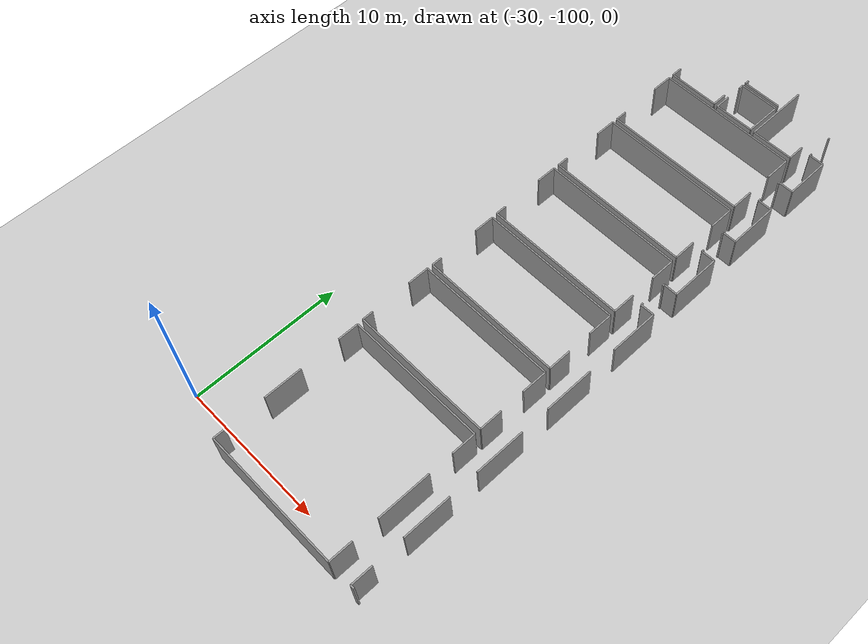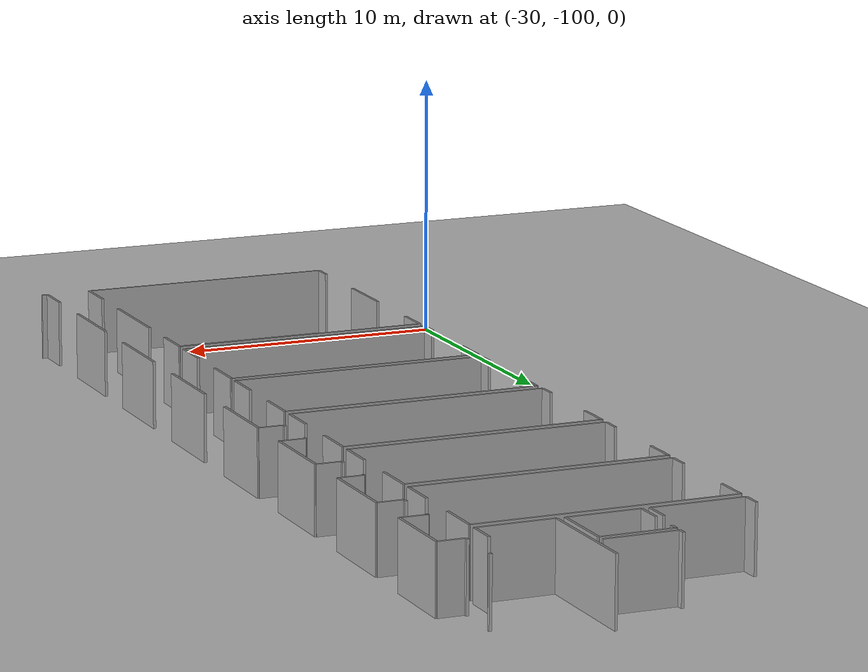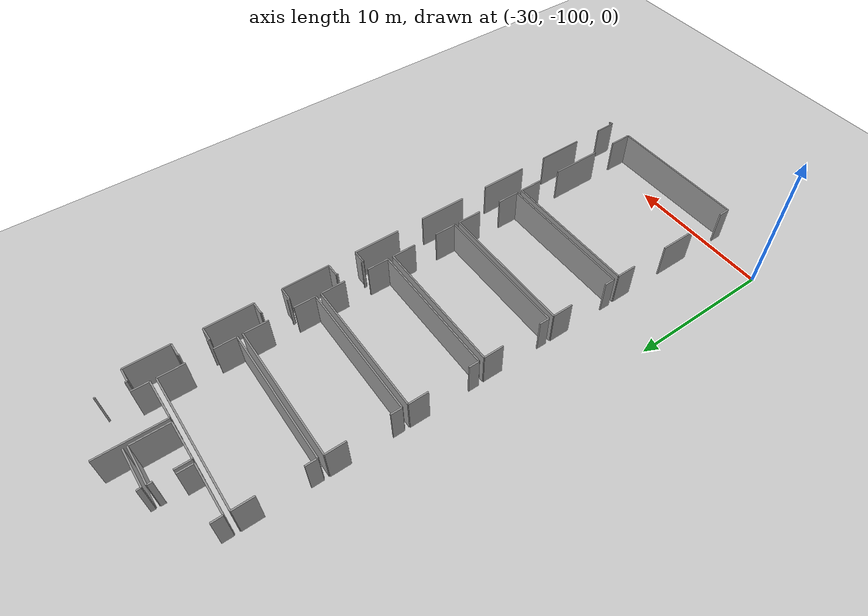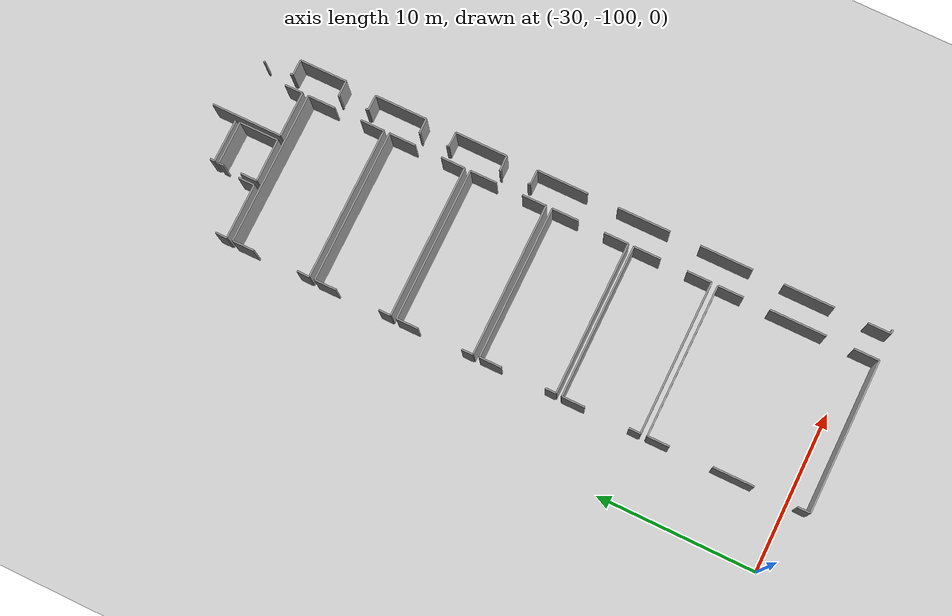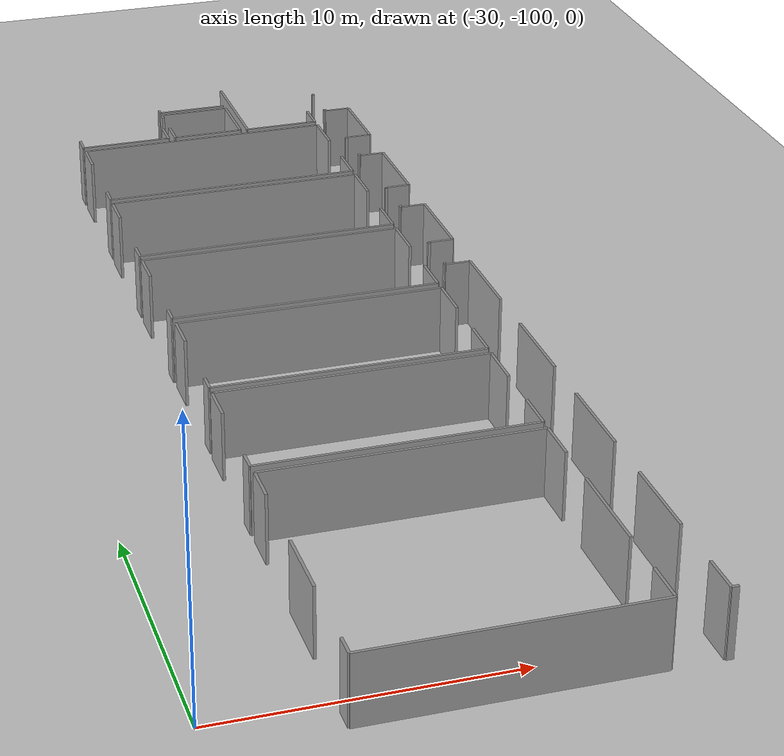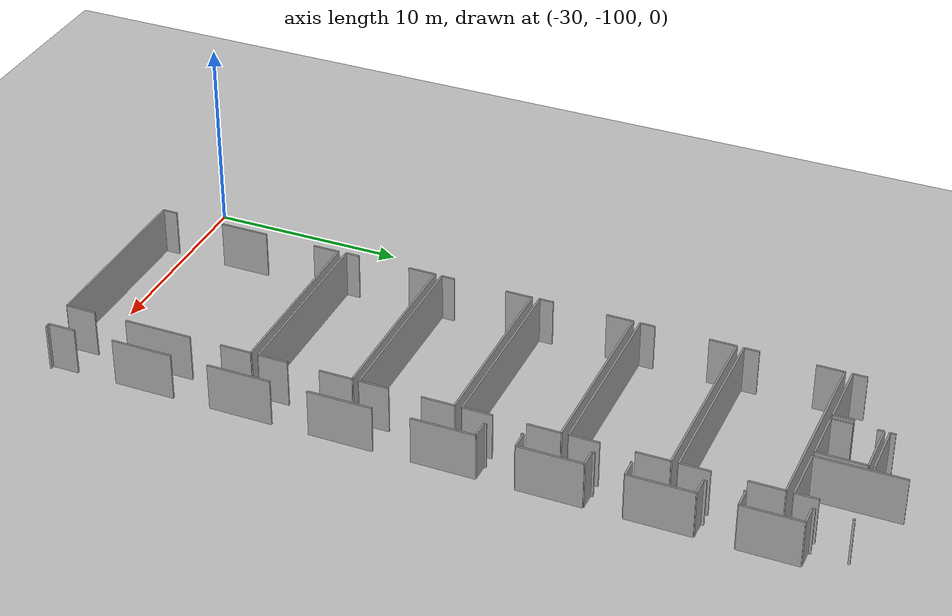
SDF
<sdf version="1.6">
 <world name="default">
  <model name="ground_plane">
   <static>1</static>
   <link name="link">
    <collision name="collision">
     <geometry><plane><normal>0 0 1</normal><size>100 100</size></plane></geometry>
     <surface><friction><ode><mu>100</mu><mu2>50</mu2></ode></friction></surface>
    </collision>
    <visual name="visual">
     <cast_shadows>0</cast_shadows>
     <geometry><plane><normal>0 0 1</normal><size>100 100</size></plane></geometry>
     <material>
      <script><uri>file://media/materials/scripts/gazebo.material</uri><name>Gazebo/Grey</name></script>
     </material>
    </visual>
   </link>
  </model>
  <model name="0510045922_A-40">
   <static>1</static>
   <link name="Wall_1692">
    <collision name="Wall_1692_Collision">
     <geometry><box><size>0.731524432865 0.1 2.5</size></box></geometry>
     <pose>0.365762216433 0 1.25 0 0 0</pose>
    </collision>
    <visual name="Wall_1692_Visual">
     <pose>0.365762216433 0 1.25 0 0 0</pose>
     <geometry><box><size>0.731524432865 0.1 2.5</size></box></geometry>
     <material>
      <script><uri>file://media/materials/scripts/gazebo.material</uri><name>Gazebo/Grey</name></script>
      <ambient>1 1 1 1</ambient>
     </material>
    </visual>
    <pose>108.210510262 -165.759267967 0 0 0 1.57079632679</pose>
   </link>
   <link name="Wall_1698">
    <collision name="Wall_1698_Collision">
     <geometry><box><size>1.0309461778 0.1 2.5</size></box></geometry>
     <pose>0.515473088899 0 1.25 0 0 0</pose>
    </collision>
    <visual name="Wall_1698_Visual">
     <pose>0.515473088899 0 1.25 0 0 0</pose>
     <geometry><box><size>1.0309461778 0.1 2.5</size></box></geometry>
     <material>
      <script><uri>file://media/materials/scripts/gazebo.material</uri><name>Gazebo/Grey</name></script>
      <ambient>1 1 1 1</ambient>
     </material>
    </visual>
    <pose>111.676736354 -164.722729872 0 0 0 -1.57079632679</pose>
   </link>
   <link name="Wall_1699">
    <collision name="Wall_1699_Collision">
     <geometry><box><size>3.46623060198 0.1 2.5</size></box></geometry>
     <pose>1.73311530099 0 1.25 0 0 0</pose>
    </collision>
    <visual name="Wall_1699_Visual">
     <pose>1.73311530099 0 1.25 0 0 0</pose>
     <geometry><box><size>3.46623060198 0.1 2.5</size></box></geometry>
     <material>
      <script><uri>file://media/materials/scripts/gazebo.material</uri><name>Gazebo/Grey</name></script>
      <ambient>1 1 1 1</ambient>
     </material>
    </visual>
    <pose>111.676736354 -165.75367605 0 0 0 -3.13997939694</pose>
   </link>
   <link name="Wall_1702">
    <collision name="Wall_1702_Collision">
     <geometry><box><size>2.67929084324 0.1 2.5</size></box></geometry>
     <pose>1.33964542162 0 1.25 0 0 0</pose>
    </collision>
    <visual name="Wall_1702_Visual">
     <pose>1.33964542162 0 1.25 0 0 0</pose>
     <geometry><box><size>2.67929084324 0.1 2.5</size></box></geometry>
     <material>
      <script><uri>file://media/materials/scripts/gazebo.material</uri><name>Gazebo/Grey</name></script>
      <ambient>1 1 1 1</ambient>
     </material>
    </visual>
    <pose>114.645790176 -163.009315626 0 0 0 3.14159265359</pose>
   </link>
   <link name="Wall_1703">
    <collision name="Wall_1703_Collision">
     <geometry><box><size>0.285441952087 0.1 2.5</size></box></geometry>
     <pose>0.142720976044 0 1.25 0 0 0</pose>
    </collision>
    <visual name="Wall_1703_Visual">
     <pose>0.142720976044 0 1.25 0 0 0</pose>
     <geometry><box><size>0.285441952087 0.1 2.5</size></box></geometry>
     <material>
      <script><uri>file://media/materials/scripts/gazebo.material</uri><name>Gazebo/Grey</name></script>
      <ambient>1 1 1 1</ambient>
     </material>
    </visual>
    <pose>111.966499333 -163.009315626 0 0 0 1.57079632679</pose>
   </link>
   <link name="Wall_1705">
    <collision name="Wall_1705_Collision">
     <geometry><box><size>1.05585562687 0.1 2.5</size></box></geometry>
     <pose>0.527927813433 0 1.25 0 0 0</pose>
    </collision>
    <visual name="Wall_1705_Visual">
     <pose>0.527927813433 0 1.25 0 0 0</pose>
     <geometry><box><size>1.05585562687 0.1 2.5</size></box></geometry>
     <material>
      <script><uri>file://media/materials/scripts/gazebo.material</uri><name>Gazebo/Grey</name></script>
      <ambient>1 1 1 1</ambient>
     </material>
    </visual>
    <pose>111.956586389 -165.762318104 0 0 0 1.57079632679</pose>
   </link>
   <link name="Wall_1706">
    <collision name="Wall_1706_Collision">
     <geometry><box><size>0.316960030501 0.1 2.5</size></box></geometry>
     <pose>0.158480015251 0 1.25 0 0 0</pose>
    </collision>
    <visual name="Wall_1706_Visual">
     <pose>0.158480015251 0 1.25 0 0 0</pose>
     <geometry><box><size>0.316960030501 0.1 2.5</size></box></geometry>
     <material>
      <script><uri>file://media/materials/scripts/gazebo.material</uri><name>Gazebo/Grey</name></script>
      <ambient>1 1 1 1</ambient>
     </material>
    </visual>
    <pose>111.956586389 -163.597229459 0 0 0 1.57079632679</pose>
   </link>
   <link name="Wall_1707">
    <collision name="Wall_1707_Collision">
     <geometry><box><size>2.70191268984 0.1 2.5</size></box></geometry>
     <pose>1.35095634492 0 1.25 0 0 0</pose>
    </collision>
    <visual name="Wall_1707_Visual">
     <pose>1.35095634492 0 1.25 0 0 0</pose>
     <geometry><box><size>2.70191268984 0.1 2.5</size></box></geometry>
     <material>
      <script><uri>file://media/materials/scripts/gazebo.material</uri><name>Gazebo/Grey</name></script>
      <ambient>1 1 1 1</ambient>
     </material>
    </visual>
    <pose>111.956586389 -163.280269429 0 0 0 0.0</pose>
   </link>
   <link name="Wall_1708">
    <collision name="Wall_1708_Collision">
     <geometry><box><size>2.46883141641 0.1 2.5</size></box></geometry>
     <pose>1.2344157082 0 1.25 0 0 0</pose>
    </collision>
    <visual name="Wall_1708_Visual">
     <pose>1.2344157082 0 1.25 0 0 0</pose>
     <geometry><box><size>2.46883141641 0.1 2.5</size></box></geometry>
     <material>
      <script><uri>file://media/materials/scripts/gazebo.material</uri><name>Gazebo/Grey</name></script>
      <ambient>1 1 1 1</ambient>
     </material>
    </visual>
    <pose>114.658499079 -163.280269429 0 0 0 -1.57079632679</pose>
   </link>
   <link name="Wall_1709">
    <collision name="Wall_1709_Collision">
     <geometry><box><size>2.70194501784 0.1 2.5</size></box></geometry>
     <pose>1.35097250892 0 1.25 0 0 0</pose>
    </collision>
    <visual name="Wall_1709_Visual">
     <pose>1.35097250892 0 1.25 0 0 0</pose>
     <geometry><box><size>2.70194501784 0.1 2.5</size></box></geometry>
     <material>
      <script><uri>file://media/materials/scripts/gazebo.material</uri><name>Gazebo/Grey</name></script>
      <ambient>1 1 1 1</ambient>
     </material>
    </visual>
    <pose>114.658499079 -165.749100845 0 0 0 -3.13670087699</pose>
   </link>
   <link name="Wall_1710">
    <collision name="Wall_1710_Collision">
     <geometry><box><size>4.4196479634 0.1 2.5</size></box></geometry>
     <pose>2.2098239817 0 1.25 0 0 0</pose>
    </collision>
    <visual name="Wall_1710_Visual">
     <pose>2.2098239817 0 1.25 0 0 0</pose>
     <geometry><box><size>4.4196479634 0.1 2.5</size></box></geometry>
     <material>
      <script><uri>file://media/materials/scripts/gazebo.material</uri><name>Gazebo/Grey</name></script>
      <ambient>1 1 1 1</ambient>
     </material>
    </visual>
    <pose>114.956141577 -165.764351528 0 0 0 1.57079632679</pose>
   </link>
   <link name="Wall_1713">
    <collision name="Wall_1713_Collision">
     <geometry><box><size>1.14176780835 0.1 2.5</size></box></geometry>
     <pose>0.570883904175 0 1.25 0 0 0</pose>
    </collision>
    <visual name="Wall_1713_Visual">
     <pose>0.570883904175 0 1.25 0 0 0</pose>
     <geometry><box><size>1.14176780835 0.1 2.5</size></box></geometry>
     <material>
      <script><uri>file://media/materials/scripts/gazebo.material</uri><name>Gazebo/Grey</name></script>
      <ambient>1 1 1 1</ambient>
     </material>
    </visual>
    <pose>117.813611235 -164.61343331 0 0 0 -1.57079632679</pose>
   </link>
   <link name="Wall_1714">
    <collision name="Wall_1714_Collision">
     <geometry><box><size>2.85748430853 0.1 2.5</size></box></geometry>
     <pose>1.42874215427 0 1.25 0 0 0</pose>
    </collision>
    <visual name="Wall_1714_Visual">
     <pose>1.42874215427 0 1.25 0 0 0</pose>
     <geometry><box><size>2.85748430853 0.1 2.5</size></box></geometry>
     <material>
      <script><uri>file://media/materials/scripts/gazebo.material</uri><name>Gazebo/Grey</name></script>
      <ambient>1 1 1 1</ambient>
     </material>
    </visual>
    <pose>117.813611235 -165.755201118 0 0 0 -3.13839038736</pose>
   </link>
   <link name="Wall_1715">
    <collision name="Wall_1715_Collision">
     <geometry><box><size>0.785156001779 0.1 2.5</size></box></geometry>
     <pose>0.39257800089 0 1.25 0 0 0</pose>
    </collision>
    <visual name="Wall_1715_Visual">
     <pose>0.39257800089 0 1.25 0 0 0</pose>
     <geometry><box><size>0.785156001779 0.1 2.5</size></box></geometry>
     <material>
      <script><uri>file://media/materials/scripts/gazebo.material</uri><name>Gazebo/Grey</name></script>
      <ambient>1 1 1 1</ambient>
     </material>
    </visual>
    <pose>108.207205948 -171.064218085 0 0 0 1.57079632679</pose>
   </link>
   <link name="Wall_1716">
    <collision name="Wall_1716_Collision">
     <geometry><box><size>1.37993264282 0.1 2.5</size></box></geometry>
     <pose>0.689966321408 0 1.25 0 0 0</pose>
    </collision>
    <visual name="Wall_1716_Visual">
     <pose>0.689966321408 0 1.25 0 0 0</pose>
     <geometry><box><size>1.37993264282 0.1 2.5</size></box></geometry>
     <material>
      <script><uri>file://media/materials/scripts/gazebo.material</uri><name>Gazebo/Grey</name></script>
      <ambient>1 1 1 1</ambient>
     </material>
    </visual>
    <pose>108.207205948 -167.512079812 0 0 0 1.57079632679</pose>
   </link>
   <link name="Wall_1717">
    <collision name="Wall_1717_Collision">
     <geometry><box><size>9.60005083561 0.1 2.5</size></box></geometry>
     <pose>4.80002541781 0 1.25 0 0 0</pose>
    </collision>
    <visual name="Wall_1717_Visual">
     <pose>4.80002541781 0 1.25 0 0 0</pose>
     <geometry><box><size>9.60005083561 0.1 2.5</size></box></geometry>
     <material>
      <script><uri>file://media/materials/scripts/gazebo.material</uri><name>Gazebo/Grey</name></script>
      <ambient>1 1 1 1</ambient>
     </material>
    </visual>
    <pose>108.207205948 -166.132147169 0 0 0 0.0</pose>
   </link>
   <link name="Wall_1718">
    <collision name="Wall_1718_Collision">
     <geometry><box><size>1.74035712016 0.1 2.5</size></box></geometry>
     <pose>0.870178560081 0 1.25 0 0 0</pose>
    </collision>
    <visual name="Wall_1718_Visual">
     <pose>0.870178560081 0 1.25 0 0 0</pose>
     <geometry><box><size>1.74035712016 0.1 2.5</size></box></geometry>
     <material>
      <script><uri>file://media/materials/scripts/gazebo.material</uri><name>Gazebo/Grey</name></script>
      <ambient>1 1 1 1</ambient>
     </material>
    </visual>
    <pose>117.807256783 -166.132147169 0 0 0 -1.57079632679</pose>
   </link>
   <link name="Wall_1719">
    <collision name="Wall_1719_Collision">
     <geometry><box><size>1.5105801614 0.1 2.5</size></box></geometry>
     <pose>0.755290080702 0 1.25 0 0 0</pose>
    </collision>
    <visual name="Wall_1719_Visual">
     <pose>0.755290080702 0 1.25 0 0 0</pose>
     <geometry><box><size>1.5105801614 0.1 2.5</size></box></geometry>
     <material>
      <script><uri>file://media/materials/scripts/gazebo.material</uri><name>Gazebo/Grey</name></script>
      <ambient>1 1 1 1</ambient>
     </material>
    </visual>
    <pose>117.807256783 -169.552367033 0 0 0 -1.57079632679</pose>
   </link>
   <link name="Wall_1720">
    <collision name="Wall_1720_Collision">
     <geometry><box><size>9.60005091973 0.1 2.5</size></box></geometry>
     <pose>4.80002545987 0 1.25 0 0 0</pose>
    </collision>
    <visual name="Wall_1720_Visual">
     <pose>4.80002545987 0 1.25 0 0 0</pose>
     <geometry><box><size>9.60005091973 0.1 2.5</size></box></geometry>
     <material>
      <script><uri>file://media/materials/scripts/gazebo.material</uri><name>Gazebo/Grey</name></script>
      <ambient>1 1 1 1</ambient>
     </material>
    </visual>
    <pose>117.807256783 -171.062947195 0 0 0 -3.14146026989</pose>
   </link>
   <link name="Wall_1721">
    <collision name="Wall_1721_Collision">
     <geometry><box><size>0.759992374658 0.1 2.5</size></box></geometry>
     <pose>0.379996187329 0 1.25 0 0 0</pose>
    </collision>
    <visual name="Wall_1721_Visual">
     <pose>0.379996187329 0 1.25 0 0 0</pose>
     <geometry><box><size>0.759992374658 0.1 2.5</size></box></geometry>
     <material>
      <script><uri>file://media/materials/scripts/gazebo.material</uri><name>Gazebo/Grey</name></script>
      <ambient>1 1 1 1</ambient>
     </material>
    </visual>
    <pose>108.191446909 -176.277409926 0 0 0 1.57079632679</pose>
   </link>
   <link name="Wall_1722">
    <collision name="Wall_1722_Collision">
     <geometry><box><size>1.36468195971 0.1 2.5</size></box></geometry>
     <pose>0.682340979856 0 1.25 0 0 0</pose>
    </collision>
    <visual name="Wall_1722_Visual">
     <pose>0.682340979856 0 1.25 0 0 0</pose>
     <geometry><box><size>1.36468195971 0.1 2.5</size></box></geometry>
     <material>
      <script><uri>file://media/materials/scripts/gazebo.material</uri><name>Gazebo/Grey</name></script>
      <ambient>1 1 1 1</ambient>
     </material>
    </visual>
    <pose>108.191446909 -172.787036919 0 0 0 1.57079632679</pose>
   </link>
   <link name="Wall_1723">
    <collision name="Wall_1723_Collision">
     <geometry><box><size>9.61657240897 0.1 2.5</size></box></geometry>
     <pose>4.80828620449 0 1.25 0 0 0</pose>
    </collision>
    <visual name="Wall_1723_Visual">
     <pose>4.80828620449 0 1.25 0 0 0</pose>
     <geometry><box><size>9.61657240897 0.1 2.5</size></box></geometry>
     <material>
      <script><uri>file://media/materials/scripts/gazebo.material</uri><name>Gazebo/Grey</name></script>
      <ambient>1 1 1 1</ambient>
     </material>
    </visual>
    <pose>108.191446909 -171.42235496 0 0 0 0.0</pose>
   </link>
   <link name="Wall_1724">
    <collision name="Wall_1724_Collision">
     <geometry><box><size>1.67681260723 0.1 2.5</size></box></geometry>
     <pose>0.838406303616 0 1.25 0 0 0</pose>
    </collision>
    <visual name="Wall_1724_Visual">
     <pose>0.838406303616 0 1.25 0 0 0</pose>
     <geometry><box><size>1.67681260723 0.1 2.5</size></box></geometry>
     <material>
      <script><uri>file://media/materials/scripts/gazebo.material</uri><name>Gazebo/Grey</name></script>
      <ambient>1 1 1 1</ambient>
     </material>
    </visual>
    <pose>117.808019318 -171.42235496 0 0 0 -1.57079632679</pose>
   </link>
   <link name="Wall_1725">
    <collision name="Wall_1725_Collision">
     <geometry><box><size>1.49863379297 0.1 2.5</size></box></geometry>
     <pose>0.749316896486 0 1.25 0 0 0</pose>
    </collision>
    <visual name="Wall_1725_Visual">
     <pose>0.749316896486 0 1.25 0 0 0</pose>
     <geometry><box><size>1.49863379297 0.1 2.5</size></box></geometry>
     <material>
      <script><uri>file://media/materials/scripts/gazebo.material</uri><name>Gazebo/Grey</name></script>
      <ambient>1 1 1 1</ambient>
     </material>
    </visual>
    <pose>117.808019318 -174.780555379 0 0 0 -1.57079632679</pose>
   </link>
   <link name="Wall_1726">
    <collision name="Wall_1726_Collision">
     <geometry><box><size>9.61657257357 0.1 2.5</size></box></geometry>
     <pose>4.80828628678 0 1.25 0 0 0</pose>
    </collision>
    <visual name="Wall_1726_Visual">
     <pose>4.80828628678 0 1.25 0 0 0</pose>
     <geometry><box><size>9.61657257357 0.1 2.5</size></box></geometry>
     <material>
      <script><uri>file://media/materials/scripts/gazebo.material</uri><name>Gazebo/Grey</name></script>
      <ambient>1 1 1 1</ambient>
     </material>
    </visual>
    <pose>117.808019318 -176.279189172 0 0 0 3.14140763483</pose>
   </link>
   <link name="Wall_1727">
    <collision name="Wall_1727_Collision">
     <geometry><box><size>0.721103132745 0.1 2.5</size></box></geometry>
     <pose>0.360551566372 0 1.25 0 0 0</pose>
    </collision>
    <visual name="Wall_1727_Visual">
     <pose>0.360551566372 0 1.25 0 0 0</pose>
     <geometry><box><size>0.721103132745 0.1 2.5</size></box></geometry>
     <material>
      <script><uri>file://media/materials/scripts/gazebo.material</uri><name>Gazebo/Grey</name></script>
      <ambient>1 1 1 1</ambient>
     </material>
    </visual>
    <pose>108.178992184 -181.500768889 0 0 0 1.57079632679</pose>
   </link>
   <link name="Wall_1728">
    <collision name="Wall_1728_Collision">
     <geometry><box><size>1.35553154985 0.1 2.5</size></box></geometry>
     <pose>0.677765774925 0 1.25 0 0 0</pose>
    </collision>
    <visual name="Wall_1728_Visual">
     <pose>0.677765774925 0 1.25 0 0 0</pose>
     <geometry><box><size>1.35553154985 0.1 2.5</size></box></geometry>
     <material>
      <script><uri>file://media/materials/scripts/gazebo.material</uri><name>Gazebo/Grey</name></script>
      <ambient>1 1 1 1</ambient>
     </material>
    </visual>
    <pose>108.178992184 -178.005312321 0 0 0 1.57079632679</pose>
   </link>
   <link name="Wall_1729">
    <collision name="Wall_1729_Collision">
     <geometry><box><size>9.63182309208 0.1 2.5</size></box></geometry>
     <pose>4.81591154604 0 1.25 0 0 0</pose>
    </collision>
    <visual name="Wall_1729_Visual">
     <pose>4.81591154604 0 1.25 0 0 0</pose>
     <geometry><box><size>9.63182309208 0.1 2.5</size></box></geometry>
     <material>
      <script><uri>file://media/materials/scripts/gazebo.material</uri><name>Gazebo/Grey</name></script>
      <ambient>1 1 1 1</ambient>
     </material>
    </visual>
    <pose>108.178992184 -176.649780771 0 0 0 0.0</pose>
   </link>
   <link name="Wall_1730">
    <collision name="Wall_1730_Collision">
     <geometry><box><size>1.67706678528 0.1 2.5</size></box></geometry>
     <pose>0.838533392642 0 1.25 0 0 0</pose>
    </collision>
    <visual name="Wall_1730_Visual">
     <pose>0.838533392642 0 1.25 0 0 0</pose>
     <geometry><box><size>1.67706678528 0.1 2.5</size></box></geometry>
     <material>
      <script><uri>file://media/materials/scripts/gazebo.material</uri><name>Gazebo/Grey</name></script>
      <ambient>1 1 1 1</ambient>
     </material>
    </visual>
    <pose>117.810815276 -176.649780771 0 0 0 -1.57079632679</pose>
   </link>
   <link name="Wall_1731">
    <collision name="Wall_1731_Collision">
     <geometry><box><size>1.51566372244 0.1 2.5</size></box></geometry>
     <pose>0.757831861219 0 1.25 0 0 0</pose>
    </collision>
    <visual name="Wall_1731_Visual">
     <pose>0.757831861219 0 1.25 0 0 0</pose>
     <geometry><box><size>1.51566372244 0.1 2.5</size></box></geometry>
     <material>
      <script><uri>file://media/materials/scripts/gazebo.material</uri><name>Gazebo/Grey</name></script>
      <ambient>1 1 1 1</ambient>
     </material>
    </visual>
    <pose>117.810815276 -179.987901125 0 0 0 -1.57079632679</pose>
   </link>
   <link name="Wall_1732">
    <collision name="Wall_1732_Collision">
     <geometry><box><size>9.63182349789 0.1 2.5</size></box></geometry>
     <pose>4.81591174894 0 1.25 0 0 0</pose>
    </collision>
    <visual name="Wall_1732_Visual">
     <pose>4.81591174894 0 1.25 0 0 0</pose>
     <geometry><box><size>9.63182349789 0.1 2.5</size></box></geometry>
     <material>
      <script><uri>file://media/materials/scripts/gazebo.material</uri><name>Gazebo/Grey</name></script>
      <ambient>1 1 1 1</ambient>
     </material>
    </visual>
    <pose>117.810815276 -181.503564847 0 0 0 3.14130237018</pose>
   </link>
   <link name="Wall_1733">
    <collision name="Wall_1733_Collision">
     <geometry><box><size>0.685772383555 0.1 2.5</size></box></geometry>
     <pose>0.342886191777 0 1.25 0 0 0</pose>
    </collision>
    <visual name="Wall_1733_Visual">
     <pose>0.342886191777 0 1.25 0 0 0</pose>
     <geometry><box><size>0.685772383555 0.1 2.5</size></box></geometry>
     <material>
      <script><uri>file://media/materials/scripts/gazebo.material</uri><name>Gazebo/Grey</name></script>
      <ambient>1 1 1 1</ambient>
     </material>
    </visual>
    <pose>108.211272797 -186.713198195 0 0 0 1.57079632679</pose>
   </link>
   <link name="Wall_1734">
    <collision name="Wall_1734_Collision">
     <geometry><box><size>1.38222024528 0.1 2.5</size></box></geometry>
     <pose>0.691110122641 0 1.25 0 0 0</pose>
    </collision>
    <visual name="Wall_1734_Visual">
     <pose>0.691110122641 0 1.25 0 0 0</pose>
     <geometry><box><size>1.38222024528 0.1 2.5</size></box></geometry>
     <material>
      <script><uri>file://media/materials/scripts/gazebo.material</uri><name>Gazebo/Grey</name></script>
      <ambient>1 1 1 1</ambient>
     </material>
    </visual>
    <pose>108.211272797 -183.270864841 0 0 0 1.57079632679</pose>
   </link>
   <link name="Wall_1735">
    <collision name="Wall_1735_Collision">
     <geometry><box><size>9.61047213573 0.1 2.5</size></box></geometry>
     <pose>4.80523606787 0 1.25 0 0 0</pose>
    </collision>
    <visual name="Wall_1735_Visual">
     <pose>4.80523606787 0 1.25 0 0 0</pose>
     <geometry><box><size>9.61047213573 0.1 2.5</size></box></geometry>
     <material>
      <script><uri>file://media/materials/scripts/gazebo.material</uri><name>Gazebo/Grey</name></script>
      <ambient>1 1 1 1</ambient>
     </material>
    </visual>
    <pose>108.211272797 -181.888644596 0 0 0 0.0</pose>
   </link>
   <link name="Wall_1736">
    <collision name="Wall_1736_Collision">
     <geometry><box><size>1.67071233399 0.1 2.5</size></box></geometry>
     <pose>0.835356166995 0 1.25 0 0 0</pose>
    </collision>
    <visual name="Wall_1736_Visual">
     <pose>0.835356166995 0 1.25 0 0 0</pose>
     <geometry><box><size>1.67071233399 0.1 2.5</size></box></geometry>
     <material>
      <script><uri>file://media/materials/scripts/gazebo.material</uri><name>Gazebo/Grey</name></script>
      <ambient>1 1 1 1</ambient>
     </material>
    </visual>
    <pose>117.821744932 -181.888644596 0 0 0 -1.57079632679</pose>
   </link>
   <link name="Wall_1737">
    <collision name="Wall_1737_Collision">
     <geometry><box><size>1.52761009087 0.1 2.5</size></box></geometry>
     <pose>0.763805045434 0 1.25 0 0 0</pose>
    </collision>
    <visual name="Wall_1737_Visual">
     <pose>0.763805045434 0 1.25 0 0 0</pose>
     <geometry><box><size>1.52761009087 0.1 2.5</size></box></geometry>
     <material>
      <script><uri>file://media/materials/scripts/gazebo.material</uri><name>Gazebo/Grey</name></script>
      <ambient>1 1 1 1</ambient>
     </material>
    </visual>
    <pose>117.821744932 -185.201092966 0 0 0 -1.57079632679</pose>
   </link>
   <link name="Wall_1738">
    <collision name="Wall_1738_Collision">
     <geometry><box><size>9.61048464295 0.1 2.5</size></box></geometry>
     <pose>4.80524232148 0 1.25 0 0 0</pose>
    </collision>
    <visual name="Wall_1738_Visual">
     <pose>4.80524232148 0 1.25 0 0 0</pose>
     <geometry><box><size>9.61048464295 0.1 2.5</size></box></geometry>
     <material>
      <script><uri>file://media/materials/scripts/gazebo.material</uri><name>Gazebo/Grey</name></script>
      <ambient>1 1 1 1</ambient>
     </material>
    </visual>
    <pose>117.821744932 -186.728703056 0 0 0 3.13997932518</pose>
   </link>
   <link name="Wall_1739">
    <collision name="Wall_1739_Collision">
     <geometry><box><size>0.722119844951 0.1 2.5</size></box></geometry>
     <pose>0.361059922476 0 1.25 0 0 0</pose>
    </collision>
    <visual name="Wall_1739_Visual">
     <pose>0.361059922476 0 1.25 0 0 0</pose>
     <geometry><box><size>0.722119844951 0.1 2.5</size></box></geometry>
     <material>
      <script><uri>file://media/materials/scripts/gazebo.material</uri><name>Gazebo/Grey</name></script>
      <ambient>1 1 1 1</ambient>
     </material>
    </visual>
    <pose>108.191446909 -191.983580098 0 0 0 1.57079632679</pose>
   </link>
   <link name="Wall_1740">
    <collision name="Wall_1740_Collision">
     <geometry><box><size>1.43483510199 0.1 2.5</size></box></geometry>
     <pose>0.717417550994 0 1.25 0 0 0</pose>
    </collision>
    <visual name="Wall_1740_Visual">
     <pose>0.717417550994 0 1.25 0 0 0</pose>
     <geometry><box><size>1.43483510199 0.1 2.5</size></box></geometry>
     <material>
      <script><uri>file://media/materials/scripts/gazebo.material</uri><name>Gazebo/Grey</name></script>
      <ambient>1 1 1 1</ambient>
     </material>
    </visual>
    <pose>108.191446909 -188.513795514 0 0 0 1.57079632679</pose>
   </link>
   <link name="Wall_1741">
    <collision name="Wall_1741_Collision">
     <geometry><box><size>9.62318103832 0.1 2.5</size></box></geometry>
     <pose>4.81159051916 0 1.25 0 0 0</pose>
    </collision>
    <visual name="Wall_1741_Visual">
     <pose>4.81159051916 0 1.25 0 0 0</pose>
     <geometry><box><size>9.62318103832 0.1 2.5</size></box></geometry>
     <material>
      <script><uri>file://media/materials/scripts/gazebo.material</uri><name>Gazebo/Grey</name></script>
      <ambient>1 1 1 1</ambient>
     </material>
    </visual>
    <pose>108.191446909 -187.078960412 0 0 0 0.0</pose>
   </link>
   <link name="Wall_1742">
    <collision name="Wall_1742_Collision">
     <geometry><box><size>1.70426383682 0.1 2.5</size></box></geometry>
     <pose>0.852131918409 0 1.25 0 0 0</pose>
    </collision>
    <visual name="Wall_1742_Visual">
     <pose>0.852131918409 0 1.25 0 0 0</pose>
     <geometry><box><size>1.70426383682 0.1 2.5</size></box></geometry>
     <material>
      <script><uri>file://media/materials/scripts/gazebo.material</uri><name>Gazebo/Grey</name></script>
      <ambient>1 1 1 1</ambient>
     </material>
    </visual>
    <pose>117.814627947 -187.078960412 0 0 0 -1.57079632679</pose>
   </link>
   <link name="Wall_1743">
    <collision name="Wall_1743_Collision">
     <geometry><box><size>1.53320200801 0.1 2.5</size></box></geometry>
     <pose>0.766601004003 0 1.25 0 0 0</pose>
    </collision>
    <visual name="Wall_1743_Visual">
     <pose>0.766601004003 0 1.25 0 0 0</pose>
     <geometry><box><size>1.53320200801 0.1 2.5</size></box></geometry>
     <material>
      <script><uri>file://media/materials/scripts/gazebo.material</uri><name>Gazebo/Grey</name></script>
      <ambient>1 1 1 1</ambient>
     </material>
    </visual>
    <pose>117.814627947 -190.451140624 0 0 0 -1.57079632679</pose>
   </link>
   <link name="Wall_1744">
    <collision name="Wall_1744_Collision">
     <geometry><box><size>9.62318106853 0.1 2.5</size></box></geometry>
     <pose>4.81159053426 0 1.25 0 0 0</pose>
    </collision>
    <visual name="Wall_1744_Visual">
     <pose>4.81159053426 0 1.25 0 0 0</pose>
     <geometry><box><size>9.62318106853 0.1 2.5</size></box></geometry>
     <material>
      <script><uri>file://media/materials/scripts/gazebo.material</uri><name>Gazebo/Grey</name></script>
      <ambient>1 1 1 1</ambient>
     </material>
    </visual>
    <pose>117.814627947 -191.984342632 0 0 0 3.14151341429</pose>
   </link>
   <link name="Wall_1745">
    <collision name="Wall_1745_Collision">
     <geometry><box><size>0.774226345555 0.1 2.5</size></box></geometry>
     <pose>0.387113172778 0 1.25 0 0 0</pose>
    </collision>
    <visual name="Wall_1745_Visual">
     <pose>0.387113172778 0 1.25 0 0 0</pose>
     <geometry><box><size>0.774226345555 0.1 2.5</size></box></geometry>
     <material>
      <script><uri>file://media/materials/scripts/gazebo.material</uri><name>Gazebo/Grey</name></script>
      <ambient>1 1 1 1</ambient>
     </material>
    </visual>
    <pose>108.224744233 -202.43995679 0 0 0 1.57079632679</pose>
   </link>
   <link name="Wall_1746">
    <collision name="Wall_1746_Collision">
     <geometry><box><size>2.55398106374 0.1 2.5</size></box></geometry>
     <pose>1.27699053187 0 1.25 0 0 0</pose>
    </collision>
    <visual name="Wall_1746_Visual">
     <pose>1.27699053187 0 1.25 0 0 0</pose>
     <geometry><box><size>2.55398106374 0.1 2.5</size></box></geometry>
     <material>
      <script><uri>file://media/materials/scripts/gazebo.material</uri><name>Gazebo/Grey</name></script>
      <ambient>1 1 1 1</ambient>
     </material>
    </visual>
    <pose>108.224744233 -199.010586516 0 0 0 1.57079632679</pose>
   </link>
   <link name="Wall_1747">
    <collision name="Wall_1747_Collision">
     <geometry><box><size>1.38501620385 0.1 2.5</size></box></geometry>
     <pose>0.692508101925 0 1.25 0 0 0</pose>
    </collision>
    <visual name="Wall_1747_Visual">
     <pose>0.692508101925 0 1.25 0 0 0</pose>
     <geometry><box><size>1.38501620385 0.1 2.5</size></box></geometry>
     <material>
      <script><uri>file://media/materials/scripts/gazebo.material</uri><name>Gazebo/Grey</name></script>
      <ambient>1 1 1 1</ambient>
     </material>
    </visual>
    <pose>108.224744233 -193.777060431 0 0 0 1.57079632679</pose>
   </link>
   <link name="Wall_1748">
    <collision name="Wall_1748_Collision">
     <geometry><box><size>9.58073330368 0.1 2.5</size></box></geometry>
     <pose>4.79036665184 0 1.25 0 0 0</pose>
    </collision>
    <visual name="Wall_1748_Visual">
     <pose>4.79036665184 0 1.25 0 0 0</pose>
     <geometry><box><size>9.58073330368 0.1 2.5</size></box></geometry>
     <material>
      <script><uri>file://media/materials/scripts/gazebo.material</uri><name>Gazebo/Grey</name></script>
      <ambient>1 1 1 1</ambient>
     </material>
    </visual>
    <pose>108.224744233 -192.392044227 0 0 0 0.0</pose>
   </link>
   <link name="Wall_1749">
    <collision name="Wall_1749_Collision">
     <geometry><box><size>1.61733494313 0.1 2.5</size></box></geometry>
     <pose>0.808667471564 0 1.25 0 0 0</pose>
    </collision>
    <visual name="Wall_1749_Visual">
     <pose>0.808667471564 0 1.25 0 0 0</pose>
     <geometry><box><size>1.61733494313 0.1 2.5</size></box></geometry>
     <material>
      <script><uri>file://media/materials/scripts/gazebo.material</uri><name>Gazebo/Grey</name></script>
      <ambient>1 1 1 1</ambient>
     </material>
    </visual>
    <pose>117.805477537 -192.392044227 0 0 0 -1.57079632679</pose>
   </link>
   <link name="Wall_1750">
    <collision name="Wall_1750_Collision">
     <geometry><box><size>3.53307491898 0.1 2.5</size></box></geometry>
     <pose>1.76653745949 0 1.25 0 0 0</pose>
    </collision>
    <visual name="Wall_1750_Visual">
     <pose>1.76653745949 0 1.25 0 0 0</pose>
     <geometry><box><size>3.53307491898 0.1 2.5</size></box></geometry>
     <material>
      <script><uri>file://media/materials/scripts/gazebo.material</uri><name>Gazebo/Grey</name></script>
      <ambient>1 1 1 1</ambient>
     </material>
    </visual>
    <pose>117.805477537 -195.647302535 0 0 0 -1.57079632679</pose>
   </link>
   <link name="Wall_1751">
    <collision name="Wall_1751_Collision">
     <geometry><box><size>1.55887399123 0.1 2.5</size></box></geometry>
     <pose>0.779436995615 0 1.25 0 0 0</pose>
    </collision>
    <visual name="Wall_1751_Visual">
     <pose>0.779436995615 0 1.25 0 0 0</pose>
     <geometry><box><size>1.55887399123 0.1 2.5</size></box></geometry>
     <material>
      <script><uri>file://media/materials/scripts/gazebo.material</uri><name>Gazebo/Grey</name></script>
      <ambient>1 1 1 1</ambient>
     </material>
    </visual>
    <pose>117.805477537 -200.895316769 0 0 0 -1.57079632679</pose>
   </link>
   <link name="Wall_1752">
    <collision name="Wall_1752_Collision">
     <geometry><box><size>9.58074387729 0.1 2.5</size></box></geometry>
     <pose>4.79037193864 0 1.25 0 0 0</pose>
    </collision>
    <visual name="Wall_1752_Visual">
     <pose>4.79037193864 0 1.25 0 0 0</pose>
     <geometry><box><size>9.58074387729 0.1 2.5</size></box></geometry>
     <material>
      <script><uri>file://media/materials/scripts/gazebo.material</uri><name>Gazebo/Grey</name></script>
      <ambient>1 1 1 1</ambient>
     </material>
    </visual>
    <pose>117.805477537 -202.454190761 0 0 0 3.14010696769</pose>
   </link>
   <link name="Wall_1804">
    <collision name="Wall_1804_Collision">
     <geometry><box><size>0.244265107708 0.1 2.5</size></box></geometry>
     <pose>0.122132553854 0 1.25 0 0 0</pose>
    </collision>
    <visual name="Wall_1804_Visual">
     <pose>0.122132553854 0 1.25 0 0 0</pose>
     <geometry><box><size>0.244265107708 0.1 2.5</size></box></geometry>
     <material>
      <script><uri>file://media/materials/scripts/gazebo.material</uri><name>Gazebo/Grey</name></script>
      <ambient>1 1 1 1</ambient>
     </material>
    </visual>
    <pose>119.748160386 -202.447327953 0 0 0 3.14159265359</pose>
   </link>
   <link name="Wall_1805">
    <collision name="Wall_1805_Collision">
     <geometry><box><size>1.42593887018 0.1 2.5</size></box></geometry>
     <pose>0.712969435089 0 1.25 0 0 0</pose>
    </collision>
    <visual name="Wall_1805_Visual">
     <pose>0.712969435089 0 1.25 0 0 0</pose>
     <geometry><box><size>1.42593887018 0.1 2.5</size></box></geometry>
     <material>
      <script><uri>file://media/materials/scripts/gazebo.material</uri><name>Gazebo/Grey</name></script>
      <ambient>1 1 1 1</ambient>
     </material>
    </visual>
    <pose>119.503895279 -202.447327953 0 0 0 1.57079632679</pose>
   </link>
   <link name="Wall_1806">
    <collision name="Wall_1806_Collision">
     <geometry><box><size>3.17366715384 0.1 2.5</size></box></geometry>
     <pose>1.58683357692 0 1.25 0 0 0</pose>
    </collision>
    <visual name="Wall_1806_Visual">
     <pose>1.58683357692 0 1.25 0 0 0</pose>
     <geometry><box><size>3.17366715384 0.1 2.5</size></box></geometry>
     <material>
      <script><uri>file://media/materials/scripts/gazebo.material</uri><name>Gazebo/Grey</name></script>
      <ambient>1 1 1 1</ambient>
     </material>
    </visual>
    <pose>119.503895279 -198.94221262 0 0 0 1.57079632679</pose>
   </link>
   <link name="Wall_1807">
    <collision name="Wall_1807_Collision">
     <geometry><box><size>3.31066912372 0.1 2.5</size></box></geometry>
     <pose>1.65533456186 0 1.25 0 0 0</pose>
    </collision>
    <visual name="Wall_1807_Visual">
     <pose>1.65533456186 0 1.25 0 0 0</pose>
     <geometry><box><size>3.31066912372 0.1 2.5</size></box></geometry>
     <material>
      <script><uri>file://media/materials/scripts/gazebo.material</uri><name>Gazebo/Grey</name></script>
      <ambient>1 1 1 1</ambient>
     </material>
    </visual>
    <pose>119.503895279 -193.826879329 0 0 0 1.57079632679</pose>
   </link>
   <link name="Wall_1808">
    <collision name="Wall_1808_Collision">
     <geometry><box><size>3.31626104086 0.1 2.5</size></box></geometry>
     <pose>1.65813052043 0 1.25 0 0 0</pose>
    </collision>
    <visual name="Wall_1808_Visual">
     <pose>1.65813052043 0 1.25 0 0 0</pose>
     <geometry><box><size>3.31626104086 0.1 2.5</size></box></geometry>
     <material>
      <script><uri>file://media/materials/scripts/gazebo.material</uri><name>Gazebo/Grey</name></script>
      <ambient>1 1 1 1</ambient>
     </material>
    </visual>
    <pose>119.503895279 -188.597674271 0 0 0 1.57079632679</pose>
   </link>
   <link name="Wall_1809">
    <collision name="Wall_1809_Collision">
     <geometry><box><size>3.23289063989 0.1 2.5</size></box></geometry>
     <pose>1.61644531995 0 1.25 0 0 0</pose>
    </collision>
    <visual name="Wall_1809_Visual">
     <pose>1.61644531995 0 1.25 0 0 0</pose>
     <geometry><box><size>3.23289063989 0.1 2.5</size></box></geometry>
     <material>
      <script><uri>file://media/materials/scripts/gazebo.material</uri><name>Gazebo/Grey</name></script>
      <ambient>1 1 1 1</ambient>
     </material>
    </visual>
    <pose>119.503895279 -183.3570312 0 0 0 1.57079632679</pose>
   </link>
   <link name="Wall_1810">
    <collision name="Wall_1810_Collision">
     <geometry><box><size>0.936391942556 0.1 2.5</size></box></geometry>
     <pose>0.468195971278 0 1.25 0 0 0</pose>
    </collision>
    <visual name="Wall_1810_Visual">
     <pose>0.468195971278 0 1.25 0 0 0</pose>
     <geometry><box><size>0.936391942556 0.1 2.5</size></box></geometry>
     <material>
      <script><uri>file://media/materials/scripts/gazebo.material</uri><name>Gazebo/Grey</name></script>
      <ambient>1 1 1 1</ambient>
     </material>
    </visual>
    <pose>119.503895279 -180.12414056 0 0 0 3.14159265359</pose>
   </link>
   <link name="Wall_1811">
    <collision name="Wall_1811_Collision">
     <geometry><box><size>0.150727584673 0.1 2.5</size></box></geometry>
     <pose>0.0753637923365 0 1.25 0 0 0</pose>
    </collision>
    <visual name="Wall_1811_Visual">
     <pose>0.0753637923365 0 1.25 0 0 0</pose>
     <geometry><box><size>0.150727584673 0.1 2.5</size></box></geometry>
     <material>
      <script><uri>file://media/materials/scripts/gazebo.material</uri><name>Gazebo/Grey</name></script>
      <ambient>1 1 1 1</ambient>
     </material>
    </visual>
    <pose>118.567503336 -180.12414056 0 0 0 1.57079632679</pose>
   </link>
   <link name="Wall_1812">
    <collision name="Wall_1812_Collision">
     <geometry><box><size>0.114125945225 0.1 2.5</size></box></geometry>
     <pose>0.0570629726123 0 1.25 0 0 0</pose>
    </collision>
    <visual name="Wall_1812_Visual">
     <pose>0.0570629726123 0 1.25 0 0 0</pose>
     <geometry><box><size>0.114125945225 0.1 2.5</size></box></geometry>
     <material>
      <script><uri>file://media/materials/scripts/gazebo.material</uri><name>Gazebo/Grey</name></script>
      <ambient>1 1 1 1</ambient>
     </material>
    </visual>
    <pose>118.567503336 -178.287195781 0 0 0 1.57079632679</pose>
   </link>
   <link name="Wall_1813">
    <collision name="Wall_1813_Collision">
     <geometry><box><size>0.945033996314 0.1 2.5</size></box></geometry>
     <pose>0.472516998157 0 1.25 0 0 0</pose>
    </collision>
    <visual name="Wall_1813_Visual">
     <pose>0.472516998157 0 1.25 0 0 0</pose>
     <geometry><box><size>0.945033996314 0.1 2.5</size></box></geometry>
     <material>
      <script><uri>file://media/materials/scripts/gazebo.material</uri><name>Gazebo/Grey</name></script>
      <ambient>1 1 1 1</ambient>
     </material>
    </visual>
    <pose>118.567503336 -178.173069835 0 0 0 0.0</pose>
   </link>
   <link name="Wall_1814">
    <collision name="Wall_1814_Collision">
     <geometry><box><size>3.29185994789 0.1 2.5</size></box></geometry>
     <pose>1.64592997395 0 1.25 0 0 0</pose>
    </collision>
    <visual name="Wall_1814_Visual">
     <pose>1.64592997395 0 1.25 0 0 0</pose>
     <geometry><box><size>3.29185994789 0.1 2.5</size></box></geometry>
     <material>
      <script><uri>file://media/materials/scripts/gazebo.material</uri><name>Gazebo/Grey</name></script>
      <ambient>1 1 1 1</ambient>
     </material>
    </visual>
    <pose>119.512537332 -178.173069835 0 0 0 1.57079632679</pose>
   </link>
   <link name="Wall_1815">
    <collision name="Wall_1815_Collision">
     <geometry><box><size>0.93105420347 0.1 2.5</size></box></geometry>
     <pose>0.465527101735 0 1.25 0 0 0</pose>
    </collision>
    <visual name="Wall_1815_Visual">
     <pose>0.465527101735 0 1.25 0 0 0</pose>
     <geometry><box><size>0.93105420347 0.1 2.5</size></box></geometry>
     <material>
      <script><uri>file://media/materials/scripts/gazebo.material</uri><name>Gazebo/Grey</name></script>
      <ambient>1 1 1 1</ambient>
     </material>
    </visual>
    <pose>119.512537332 -174.881209888 0 0 0 3.14159265359</pose>
   </link>
   <link name="Wall_1816">
    <collision name="Wall_1816_Collision">
     <geometry><box><size>0.149710872466 0.1 2.5</size></box></geometry>
     <pose>0.0748554362331 0 1.25 0 0 0</pose>
    </collision>
    <visual name="Wall_1816_Visual">
     <pose>0.0748554362331 0 1.25 0 0 0</pose>
     <geometry><box><size>0.149710872466 0.1 2.5</size></box></geometry>
     <material>
      <script><uri>file://media/materials/scripts/gazebo.material</uri><name>Gazebo/Grey</name></script>
      <ambient>1 1 1 1</ambient>
     </material>
    </visual>
    <pose>118.581483129 -174.881209888 0 0 0 1.57079632679</pose>
   </link>
   <link name="Wall_1817">
    <collision name="Wall_1817_Collision">
     <geometry><box><size>0.0876914278452 0.1 2.5</size></box></geometry>
     <pose>0.0438457139226 0 1.25 0 0 0</pose>
    </collision>
    <visual name="Wall_1817_Visual">
     <pose>0.0438457139226 0 1.25 0 0 0</pose>
     <geometry><box><size>0.0876914278452 0.1 2.5</size></box></geometry>
     <material>
      <script><uri>file://media/materials/scripts/gazebo.material</uri><name>Gazebo/Grey</name></script>
      <ambient>1 1 1 1</ambient>
     </material>
    </visual>
    <pose>118.581483129 -173.065616064 0 0 0 1.57079632679</pose>
   </link>
   <link name="Wall_1818">
    <collision name="Wall_1818_Collision">
     <geometry><box><size>0.920378725297 0.1 2.5</size></box></geometry>
     <pose>0.460189362649 0 1.25 0 0 0</pose>
    </collision>
    <visual name="Wall_1818_Visual">
     <pose>0.460189362649 0 1.25 0 0 0</pose>
     <geometry><box><size>0.920378725297 0.1 2.5</size></box></geometry>
     <material>
      <script><uri>file://media/materials/scripts/gazebo.material</uri><name>Gazebo/Grey</name></script>
      <ambient>1 1 1 1</ambient>
     </material>
    </visual>
    <pose>118.581483129 -172.977924636 0 0 0 0.0</pose>
   </link>
   <link name="Wall_1819">
    <collision name="Wall_1819_Collision">
     <geometry><box><size>3.29999364555 0.1 2.5</size></box></geometry>
     <pose>1.64999682277 0 1.25 0 0 0</pose>
    </collision>
    <visual name="Wall_1819_Visual">
     <pose>1.64999682277 0 1.25 0 0 0</pose>
     <geometry><box><size>3.29999364555 0.1 2.5</size></box></geometry>
     <material>
      <script><uri>file://media/materials/scripts/gazebo.material</uri><name>Gazebo/Grey</name></script>
      <ambient>1 1 1 1</ambient>
     </material>
    </visual>
    <pose>119.501861854 -172.977924636 0 0 0 1.57079632679</pose>
   </link>
   <link name="Wall_1820">
    <collision name="Wall_1820_Collision">
     <geometry><box><size>0.953421872021 0.1 2.5</size></box></geometry>
     <pose>0.476710936011 0 1.25 0 0 0</pose>
    </collision>
    <visual name="Wall_1820_Visual">
     <pose>0.476710936011 0 1.25 0 0 0</pose>
     <geometry><box><size>0.953421872021 0.1 2.5</size></box></geometry>
     <material>
      <script><uri>file://media/materials/scripts/gazebo.material</uri><name>Gazebo/Grey</name></script>
      <ambient>1 1 1 1</ambient>
     </material>
    </visual>
    <pose>119.501861854 -169.677930991 0 0 0 3.14159265359</pose>
   </link>
   <link name="Wall_1821">
    <collision name="Wall_1821_Collision">
     <geometry><box><size>0.174874499587 0.1 2.5</size></box></geometry>
     <pose>0.0874372497935 0 1.25 0 0 0</pose>
    </collision>
    <visual name="Wall_1821_Visual">
     <pose>0.0874372497935 0 1.25 0 0 0</pose>
     <geometry><box><size>0.174874499587 0.1 2.5</size></box></geometry>
     <material>
      <script><uri>file://media/materials/scripts/gazebo.material</uri><name>Gazebo/Grey</name></script>
      <ambient>1 1 1 1</ambient>
     </material>
    </visual>
    <pose>118.548439982 -169.677930991 0 0 0 1.57079632679</pose>
   </link>
   <link name="Wall_1822">
    <collision name="Wall_1822_Collision">
     <geometry><box><size>0.0950625913453 0.1 2.5</size></box></geometry>
     <pose>0.0475312956726 0 1.25 0 0 0</pose>
    </collision>
    <visual name="Wall_1822_Visual">
     <pose>0.0475312956726 0 1.25 0 0 0</pose>
     <geometry><box><size>0.0950625913453 0.1 2.5</size></box></geometry>
     <material>
      <script><uri>file://media/materials/scripts/gazebo.material</uri><name>Gazebo/Grey</name></script>
      <ambient>1 1 1 1</ambient>
     </material>
    </visual>
    <pose>118.548439982 -167.825989706 0 0 0 1.57079632679</pose>
   </link>
   <link name="Wall_1823">
    <collision name="Wall_1823_Collision">
     <geometry><box><size>0.99739467497 0.1 2.5</size></box></geometry>
     <pose>0.498697337485 0 1.25 0 0 0</pose>
    </collision>
    <visual name="Wall_1823_Visual">
     <pose>0.498697337485 0 1.25 0 0 0</pose>
     <geometry><box><size>0.99739467497 0.1 2.5</size></box></geometry>
     <material>
      <script><uri>file://media/materials/scripts/gazebo.material</uri><name>Gazebo/Grey</name></script>
      <ambient>1 1 1 1</ambient>
     </material>
    </visual>
    <pose>118.548439982 -167.730927114 0 0 0 0.0</pose>
   </link>
   <link name="Wall_1824">
    <collision name="Wall_1824_Collision">
     <geometry><box><size>2.98710046387 0.1 2.5</size></box></geometry>
     <pose>1.49355023194 0 1.25 0 0 0</pose>
    </collision>
    <visual name="Wall_1824_Visual">
     <pose>1.49355023194 0 1.25 0 0 0</pose>
     <geometry><box><size>2.98710046387 0.1 2.5</size></box></geometry>
     <material>
      <script><uri>file://media/materials/scripts/gazebo.material</uri><name>Gazebo/Grey</name></script>
      <ambient>1 1 1 1</ambient>
     </material>
    </visual>
    <pose>119.545834657 -167.730927114 0 0 0 1.57079632679</pose>
   </link>
   <link name="Wall_1825">
    <collision name="Wall_1825_Collision">
     <geometry><box><size>0.990277689522 0.1 2.5</size></box></geometry>
     <pose>0.495138844761 0 1.25 0 0 0</pose>
    </collision>
    <visual name="Wall_1825_Visual">
     <pose>0.495138844761 0 1.25 0 0 0</pose>
     <geometry><box><size>0.990277689522 0.1 2.5</size></box></geometry>
     <material>
      <script><uri>file://media/materials/scripts/gazebo.material</uri><name>Gazebo/Grey</name></script>
      <ambient>1 1 1 1</ambient>
     </material>
    </visual>
    <pose>119.545834657 -164.743826651 0 0 0 3.14159265359</pose>
   </link>
   <link name="Wall_1826">
    <collision name="Wall_1826_Collision">
     <geometry><box><size>0.161148884794 0.1 2.5</size></box></geometry>
     <pose>0.0805744423969 0 1.25 0 0 0</pose>
    </collision>
    <visual name="Wall_1826_Visual">
     <pose>0.0805744423969 0 1.25 0 0 0</pose>
     <geometry><box><size>0.161148884794 0.1 2.5</size></box></geometry>
     <material>
      <script><uri>file://media/materials/scripts/gazebo.material</uri><name>Gazebo/Grey</name></script>
      <ambient>1 1 1 1</ambient>
     </material>
    </visual>
    <pose>118.555556968 -164.743826651 0 0 0 1.57079632679</pose>
   </link>
   <link name="Wall_1827">
    <collision name="Wall_1827_Collision">
     <geometry><box><size>0.103958823156 0.1 2.5</size></box></geometry>
     <pose>0.0519794115778 0 1.25 0 0 0</pose>
    </collision>
    <visual name="Wall_1827_Visual">
     <pose>0.0519794115778 0 1.25 0 0 0</pose>
     <geometry><box><size>0.103958823156 0.1 2.5</size></box></geometry>
     <material>
      <script><uri>file://media/materials/scripts/gazebo.material</uri><name>Gazebo/Grey</name></script>
      <ambient>1 1 1 1</ambient>
     </material>
    </visual>
    <pose>118.555556968 -162.925691047 0 0 0 1.57079632679</pose>
   </link>
   <pose>-134.15 101.210036856 0 0 0 0</pose>
  </model>
 </world>
</sdf>
